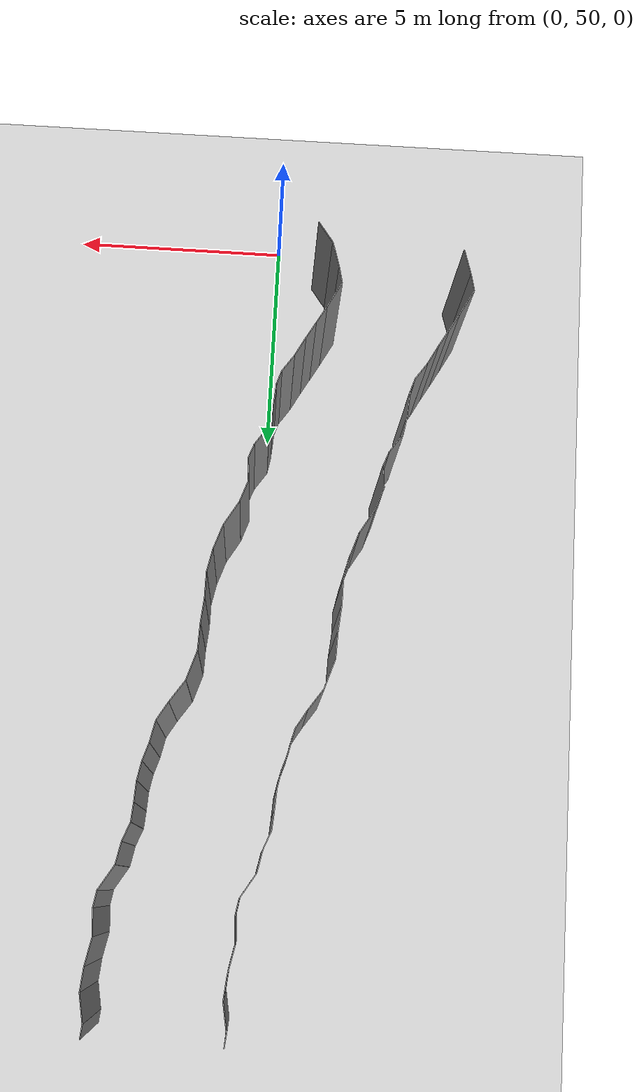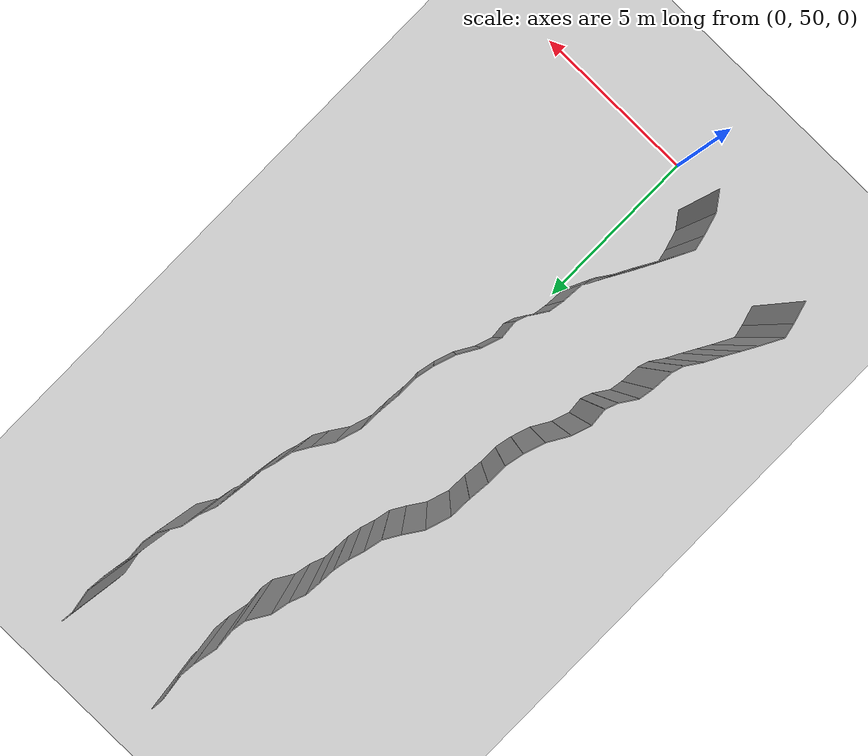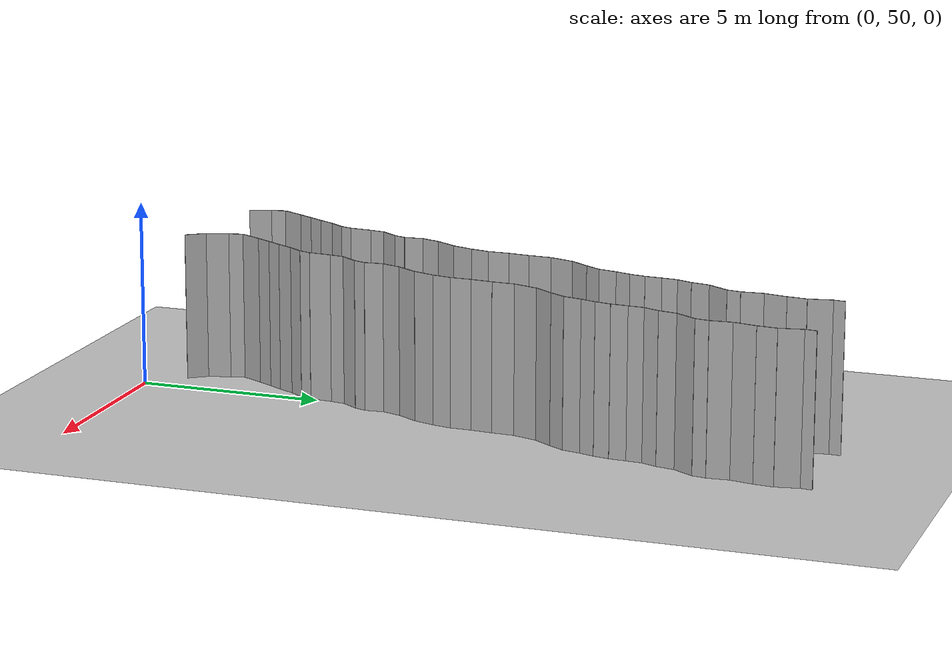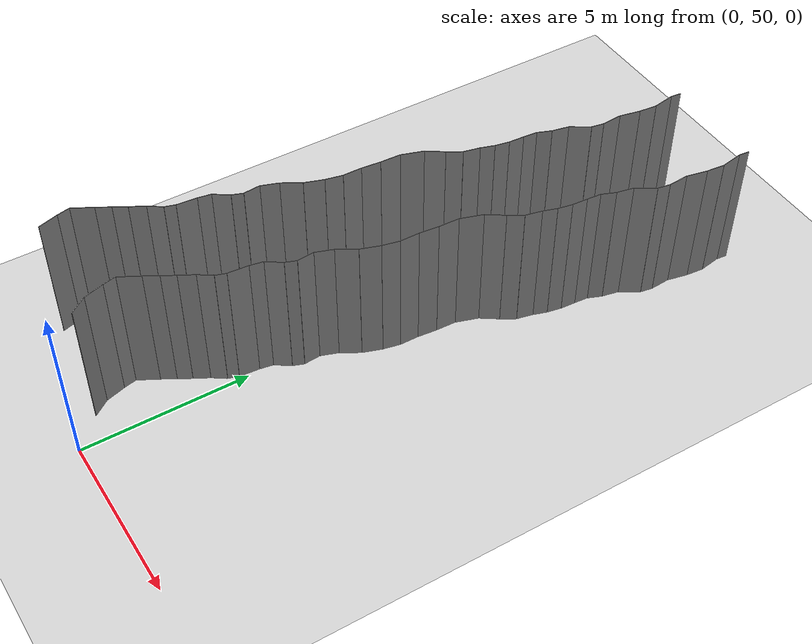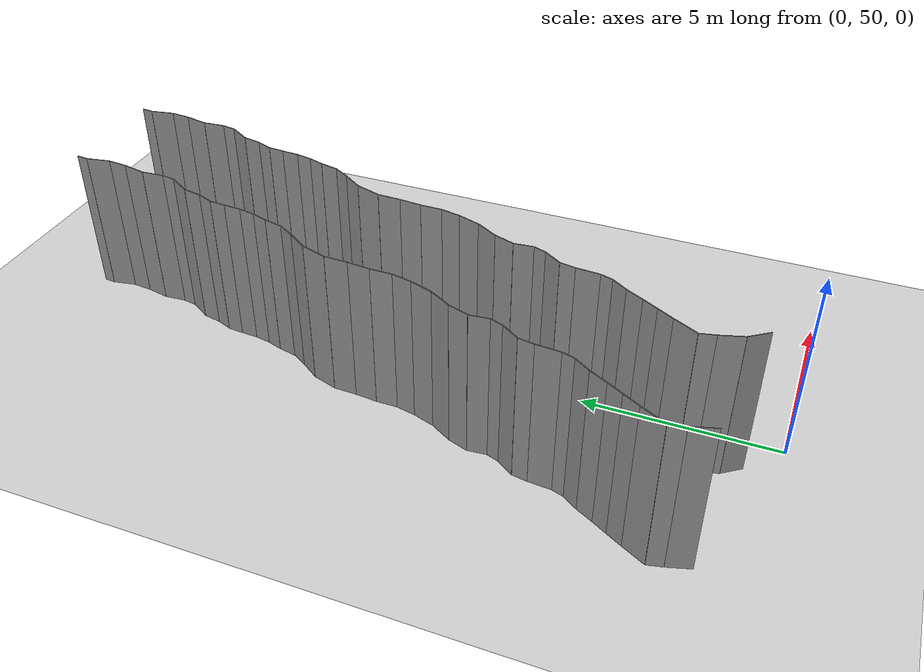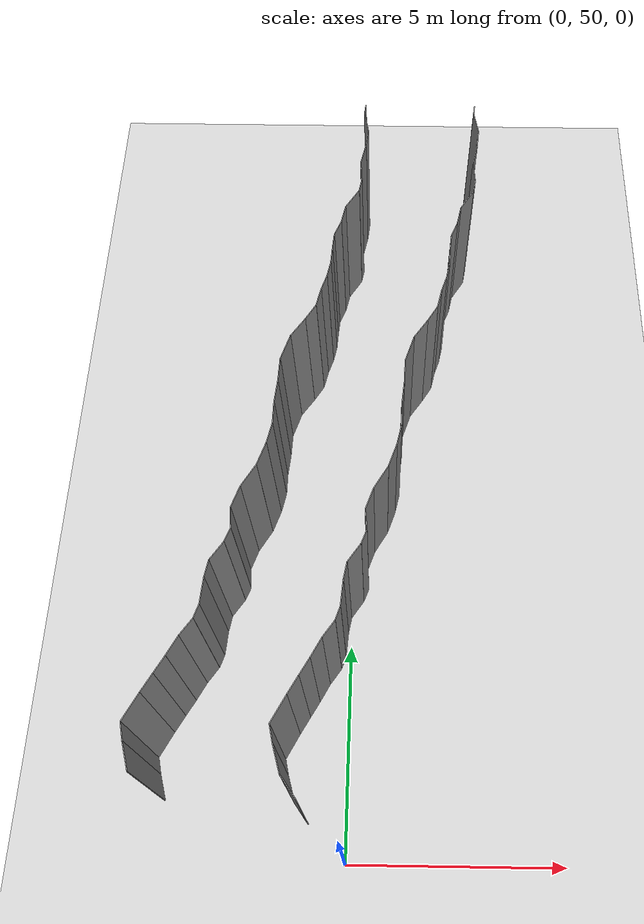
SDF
<sdf version="1.6">
 <world name="default">
  <model name="ground_plane">
   <static>1</static>
   <link name="link">
    <collision name="collision">
     <geometry><plane><normal>0 0 1</normal><size>200 200</size></plane></geometry>
     <surface><friction><ode><mu>100</mu><mu2>50</mu2></ode></friction></surface>
    </collision>
    <visual name="visual">
     <cast_shadows>0</cast_shadows>
     <geometry><plane><normal>0 0 1</normal><size>200 200</size></plane></geometry>
     <material>
      <script><uri>file://media/materials/scripts/gazebo.material</uri><name>Gazebo/Grey</name></script>
     </material>
    </visual>
   </link>
   <pose>0 100 0 0 -0 0</pose>
  </model>
  <model name="wall_225">
   <static>1</static>
   <pose>-1.053960974131007 51.09263801632883 2 0 0 0.6311708383575996</pose>
   <link name="link">
    <collision name="collision"><geometry><box><size>0.02 0.585196452979 4</size></box></geometry></collision>
    <visual name="visual">
     <material>
      <script><name>Gazebo/Grey</name><uri>file://media/materials/scripts/gazebo.material</uri></script>
     </material>
     <geometry><box><size>0.02 0.585196452979 4</size></box></geometry>
    </visual>
   </link>
  </model>
  <model name="wall_226">
   <static>1</static>
   <pose>-4.313591516272705 51.62228531443991 2 0 0 0.28815355595222164</pose>
   <link name="link">
    <collision name="collision"><geometry><box><size>0.02 0.612079652356 4</size></box></geometry></collision>
    <visual name="visual">
     <material>
      <script><name>Gazebo/Grey</name><uri>file://media/materials/scripts/gazebo.material</uri></script>
     </material>
     <geometry><box><size>0.02 0.612079652356 4</size></box></geometry>
    </visual>
   </link>
  </model>
  <model name="wall_227">
   <static>1</static>
   <pose>-1.3135915162727052 51.62228531443991 2 0 0 0.28815355595222164</pose>
   <link name="link">
    <collision name="collision"><geometry><box><size>0.02 0.612079652356 4</size></box></geometry></collision>
    <visual name="visual">
     <material>
      <script><name>Gazebo/Grey</name><uri>file://media/materials/scripts/gazebo.material</uri></script>
     </material>
     <geometry><box><size>0.02 0.612079652356 4</size></box></geometry>
    </visual>
   </link>
  </model>
  <model name="wall_228">
   <static>1</static>
   <pose>-4.443795864172004 52.1078659533584 2 0 0 0.2213020373706532</pose>
   <link name="link">
    <collision name="collision"><geometry><box><size>0.02 0.39392436345 4</size></box></geometry></collision>
    <visual name="visual">
     <material>
      <script><name>Gazebo/Grey</name><uri>file://media/materials/scripts/gazebo.material</uri></script>
     </material>
     <geometry><box><size>0.02 0.39392436345 4</size></box></geometry>
    </visual>
   </link>
  </model>
  <model name="wall_229">
   <static>1</static>
   <pose>-1.443795864172004 52.1078659533584 2 0 0 0.2213020373706532</pose>
   <link name="link">
    <collision name="collision"><geometry><box><size>0.02 0.39392436345 4</size></box></geometry></collision>
    <visual name="visual">
     <material>
      <script><name>Gazebo/Grey</name><uri>file://media/materials/scripts/gazebo.material</uri></script>
     </material>
     <geometry><box><size>0.02 0.39392436345 4</size></box></geometry>
    </visual>
   </link>
  </model>
  <model name="wall_230">
   <static>1</static>
   <pose>-4.3285591184644145 52.595350454177186 2 0 0 -0.4924923214109593</pose>
   <link name="link">
    <collision name="collision"><geometry><box><size>0.02 0.670313421921 4</size></box></geometry></collision>
    <visual name="visual">
     <material>
      <script><name>Gazebo/Grey</name><uri>file://media/materials/scripts/gazebo.material</uri></script>
     </material>
     <geometry><box><size>0.02 0.670313421921 4</size></box></geometry>
    </visual>
   </link>
  </model>
  <model name="wall_231">
   <static>1</static>
   <pose>-1.3285591184644145 52.595350454177186 2 0 0 -0.4924923214109593</pose>
   <link name="link">
    <collision name="collision"><geometry><box><size>0.02 0.670313421921 4</size></box></geometry></collision>
    <visual name="visual">
     <material>
      <script><name>Gazebo/Grey</name><uri>file://media/materials/scripts/gazebo.material</uri></script>
     </material>
     <geometry><box><size>0.02 0.670313421921 4</size></box></geometry>
    </visual>
   </link>
  </model>
  <model name="wall_232">
   <static>1</static>
   <pose>-4.057388581017793 53.08892494926154 2 0 0 -0.516920984669709</pose>
   <link name="link">
    <collision name="collision"><geometry><box><size>0.02 0.456087662764 4</size></box></geometry></collision>
    <visual name="visual">
     <material>
      <script><name>Gazebo/Grey</name><uri>file://media/materials/scripts/gazebo.material</uri></script>
     </material>
     <geometry><box><size>0.02 0.456087662764 4</size></box></geometry>
    </visual>
   </link>
  </model>
  <model name="wall_233">
   <static>1</static>
   <pose>-1.0573885810177934 53.08892494926154 2 0 0 -0.516920984669709</pose>
   <link name="link">
    <collision name="collision"><geometry><box><size>0.02 0.456087662764 4</size></box></geometry></collision>
    <visual name="visual">
     <material>
      <script><name>Gazebo/Grey</name><uri>file://media/materials/scripts/gazebo.material</uri></script>
     </material>
     <geometry><box><size>0.02 0.456087662764 4</size></box></geometry>
    </visual>
   </link>
  </model>
  <model name="wall_234">
   <static>1</static>
   <pose>-3.8372769820039982 53.47367563590675 2 0 0 -0.5225287629389027</pose>
   <link name="link">
    <collision name="collision"><geometry><box><size>0.02 0.430442089275 4</size></box></geometry></collision>
    <visual name="visual">
     <material>
      <script><name>Gazebo/Grey</name><uri>file://media/materials/scripts/gazebo.material</uri></script>
     </material>
     <geometry><box><size>0.02 0.430442089275 4</size></box></geometry>
    </visual>
   </link>
  </model>
  <model name="wall_235">
   <static>1</static>
   <pose>-0.8372769820039982 53.47367563590675 2 0 0 -0.5225287629389027</pose>
   <link name="link">
    <collision name="collision"><geometry><box><size>0.02 0.430442089275 4</size></box></geometry></collision>
    <visual name="visual">
     <material>
      <script><name>Gazebo/Grey</name><uri>file://media/materials/scripts/gazebo.material</uri></script>
     </material>
     <geometry><box><size>0.02 0.430442089275 4</size></box></geometry>
    </visual>
   </link>
  </model>
  <model name="wall_236">
   <static>1</static>
   <pose>-3.6143831962733057 53.87472829082133 2 0 0 -0.49378037622410126</pose>
   <link name="link">
    <collision name="collision"><geometry><box><size>0.02 0.487312145254 4</size></box></geometry></collision>
    <visual name="visual">
     <material>
      <script><name>Gazebo/Grey</name><uri>file://media/materials/scripts/gazebo.material</uri></script>
     </material>
     <geometry><box><size>0.02 0.487312145254 4</size></box></geometry>
    </visual>
   </link>
  </model>
  <model name="wall_237">
   <static>1</static>
   <pose>-0.6143831962733057 53.87472829082133 2 0 0 -0.49378037622410126</pose>
   <link name="link">
    <collision name="collision"><geometry><box><size>0.02 0.487312145254 4</size></box></geometry></collision>
    <visual name="visual">
     <material>
      <script><name>Gazebo/Grey</name><uri>file://media/materials/scripts/gazebo.material</uri></script>
     </material>
     <geometry><box><size>0.02 0.487312145254 4</size></box></geometry>
    </visual>
   </link>
  </model>
  <model name="wall_238">
   <static>1</static>
   <pose>-3.367631276827038 54.27858616292878 2 0 0 -0.6062954650359139</pose>
   <link name="link">
    <collision name="collision"><geometry><box><size>0.02 0.460733275768 4</size></box></geometry></collision>
    <visual name="visual">
     <material>
      <script><name>Gazebo/Grey</name><uri>file://media/materials/scripts/gazebo.material</uri></script>
     </material>
     <geometry><box><size>0.02 0.460733275768 4</size></box></geometry>
    </visual>
   </link>
  </model>
  <model name="wall_239">
   <static>1</static>
   <pose>-0.367631276827038 54.27858616292878 2 0 0 -0.6062954650359139</pose>
   <link name="link">
    <collision name="collision"><geometry><box><size>0.02 0.460733275768 4</size></box></geometry></collision>
    <visual name="visual">
     <material>
      <script><name>Gazebo/Grey</name><uri>file://media/materials/scripts/gazebo.material</uri></script>
     </material>
     <geometry><box><size>0.02 0.460733275768 4</size></box></geometry>
    </visual>
   </link>
  </model>
  <model name="wall_240">
   <static>1</static>
   <pose>-3.1864680429670886 54.62131764543145 2 0 0 -0.3144156220287633</pose>
   <link name="link">
    <collision name="collision"><geometry><box><size>0.02 0.322666672977 4</size></box></geometry></collision>
    <visual name="visual">
     <material>
      <script><name>Gazebo/Grey</name><uri>file://media/materials/scripts/gazebo.material</uri></script>
     </material>
     <geometry><box><size>0.02 0.322666672977 4</size></box></geometry>
    </visual>
   </link>
  </model>
  <model name="wall_241">
   <static>1</static>
   <pose>-0.18646804296708863 54.62131764543145 2 0 0 -0.3144156220287633</pose>
   <link name="link">
    <collision name="collision"><geometry><box><size>0.02 0.322666672977 4</size></box></geometry></collision>
    <visual name="visual">
     <material>
      <script><name>Gazebo/Grey</name><uri>file://media/materials/scripts/gazebo.material</uri></script>
     </material>
     <geometry><box><size>0.02 0.322666672977 4</size></box></geometry>
    </visual>
   </link>
  </model>
  <model name="wall_242">
   <static>1</static>
   <pose>-3.113870644262893 55.07730561660844 2 0 0 -0.07489616552642116</pose>
   <link name="link">
    <collision name="collision"><geometry><box><size>0.02 0.606828458838 4</size></box></geometry></collision>
    <visual name="visual">
     <material>
      <script><name>Gazebo/Grey</name><uri>file://media/materials/scripts/gazebo.material</uri></script>
     </material>
     <geometry><box><size>0.02 0.606828458838 4</size></box></geometry>
    </visual>
   </link>
  </model>
  <model name="wall_243">
   <static>1</static>
   <pose>-0.11387064426289317 55.07730561660844 2 0 0 -0.07489616552642116</pose>
   <link name="link">
    <collision name="collision"><geometry><box><size>0.02 0.606828458838 4</size></box></geometry></collision>
    <visual name="visual">
     <material>
      <script><name>Gazebo/Grey</name><uri>file://media/materials/scripts/gazebo.material</uri></script>
     </material>
     <geometry><box><size>0.02 0.606828458838 4</size></box></geometry>
    </visual>
   </link>
  </model>
  <model name="wall_244">
   <static>1</static>
   <pose>-3.0568766505906884 55.57688165887924 2 0 0 -0.1723270054477809</pose>
   <link name="link">
    <collision name="collision"><geometry><box><size>0.02 0.399948688607 4</size></box></geometry></collision>
    <visual name="visual">
     <material>
      <script><name>Gazebo/Grey</name><uri>file://media/materials/scripts/gazebo.material</uri></script>
     </material>
     <geometry><box><size>0.02 0.399948688607 4</size></box></geometry>
    </visual>
   </link>
  </model>
  <model name="wall_245">
   <static>1</static>
   <pose>-0.05687665059068836 55.57688165887924 2 0 0 -0.1723270054477809</pose>
   <link name="link">
    <collision name="collision"><geometry><box><size>0.02 0.399948688607 4</size></box></geometry></collision>
    <visual name="visual">
     <material>
      <script><name>Gazebo/Grey</name><uri>file://media/materials/scripts/gazebo.material</uri></script>
     </material>
     <geometry><box><size>0.02 0.399948688607 4</size></box></geometry>
    </visual>
   </link>
  </model>
  <model name="wall_246">
   <static>1</static>
   <pose>-2.8752136439465263 55.98982087889908 2 0 0 -0.5988914115816751</pose>
   <link name="link">
    <collision name="collision"><geometry><box><size>0.02 0.522849860803 4</size></box></geometry></collision>
    <visual name="visual">
     <material>
      <script><name>Gazebo/Grey</name><uri>file://media/materials/scripts/gazebo.material</uri></script>
     </material>
     <geometry><box><size>0.02 0.522849860803 4</size></box></geometry>
    </visual>
   </link>
  </model>
  <model name="wall_247">
   <static>1</static>
   <pose>0.12478635605347366 55.98982087889908 2 0 0 -0.5988914115816751</pose>
   <link name="link">
    <collision name="collision"><geometry><box><size>0.02 0.522849860803 4</size></box></geometry></collision>
    <visual name="visual">
     <material>
      <script><name>Gazebo/Grey</name><uri>file://media/materials/scripts/gazebo.material</uri></script>
     </material>
     <geometry><box><size>0.02 0.522849860803 4</size></box></geometry>
    </visual>
   </link>
  </model>
  <model name="wall_248">
   <static>1</static>
   <pose>-2.6685911568690313 56.365914588318134 2 0 0 -0.35431621237661615</pose>
   <link name="link">
    <collision name="collision"><geometry><box><size>0.02 0.341549498167 4</size></box></geometry></collision>
    <visual name="visual">
     <material>
      <script><name>Gazebo/Grey</name><uri>file://media/materials/scripts/gazebo.material</uri></script>
     </material>
     <geometry><box><size>0.02 0.341549498167 4</size></box></geometry>
    </visual>
   </link>
  </model>
  <model name="wall_249">
   <static>1</static>
   <pose>0.33140884313096874 56.365914588318134 2 0 0 -0.35431621237661615</pose>
   <link name="link">
    <collision name="collision"><geometry><box><size>0.02 0.341549498167 4</size></box></geometry></collision>
    <visual name="visual">
     <material>
      <script><name>Gazebo/Grey</name><uri>file://media/materials/scripts/gazebo.material</uri></script>
     </material>
     <geometry><box><size>0.02 0.341549498167 4</size></box></geometry>
    </visual>
   </link>
  </model>
  <model name="wall_250">
   <static>1</static>
   <pose>-2.630984577721905 56.77740937958865 2 0 0 0.08590492916488433</pose>
   <link name="link">
    <collision name="collision"><geometry><box><size>0.02 0.504516224676 4</size></box></geometry></collision>
    <visual name="visual">
     <material>
      <script><name>Gazebo/Grey</name><uri>file://media/materials/scripts/gazebo.material</uri></script>
     </material>
     <geometry><box><size>0.02 0.504516224676 4</size></box></geometry>
    </visual>
   </link>
  </model>
  <model name="wall_251">
   <static>1</static>
   <pose>0.3690154222780948 56.77740937958865 2 0 0 0.08590492916488433</pose>
   <link name="link">
    <collision name="collision"><geometry><box><size>0.02 0.504516224676 4</size></box></geometry></collision>
    <visual name="visual">
     <material>
      <script><name>Gazebo/Grey</name><uri>file://media/materials/scripts/gazebo.material</uri></script>
     </material>
     <geometry><box><size>0.02 0.504516224676 4</size></box></geometry>
    </visual>
   </link>
  </model>
  <model name="wall_252">
   <static>1</static>
   <pose>-2.564251802209616 57.28565608776256 2 0 0 -0.33130667886279186</pose>
   <link name="link">
    <collision name="collision"><geometry><box><size>0.02 0.54338809382 4</size></box></geometry></collision>
    <visual name="visual">
     <material>
      <script><name>Gazebo/Grey</name><uri>file://media/materials/scripts/gazebo.material</uri></script>
     </material>
     <geometry><box><size>0.02 0.54338809382 4</size></box></geometry>
    </visual>
   </link>
  </model>
  <model name="wall_253">
   <static>1</static>
   <pose>0.4357481977903839 57.28565608776256 2 0 0 -0.33130667886279186</pose>
   <link name="link">
    <collision name="collision"><geometry><box><size>0.02 0.54338809382 4</size></box></geometry></collision>
    <visual name="visual">
     <material>
      <script><name>Gazebo/Grey</name><uri>file://media/materials/scripts/gazebo.material</uri></script>
     </material>
     <geometry><box><size>0.02 0.54338809382 4</size></box></geometry>
    </visual>
   </link>
  </model>
  <model name="wall_254">
   <static>1</static>
   <pose>-2.314101299269996 57.81556078549317 2 0 0 -0.5349679301866068</pose>
   <link name="link">
    <collision name="collision"><geometry><box><size>0.02 0.634640593675 4</size></box></geometry></collision>
    <visual name="visual">
     <material>
      <script><name>Gazebo/Grey</name><uri>file://media/materials/scripts/gazebo.material</uri></script>
     </material>
     <geometry><box><size>0.02 0.634640593675 4</size></box></geometry>
    </visual>
   </link>
  </model>
  <model name="wall_255">
   <static>1</static>
   <pose>0.6858987007300041 57.81556078549317 2 0 0 -0.5349679301866068</pose>
   <link name="link">
    <collision name="collision"><geometry><box><size>0.02 0.634640593675 4</size></box></geometry></collision>
    <visual name="visual">
     <material>
      <script><name>Gazebo/Grey</name><uri>file://media/materials/scripts/gazebo.material</uri></script>
     </material>
     <geometry><box><size>0.02 0.634640593675 4</size></box></geometry>
    </visual>
   </link>
  </model>
  <model name="wall_256">
   <static>1</static>
   <pose>-2.0568864764338244 58.37078368838456 2 0 0 -0.3260863302510909</pose>
   <link name="link">
    <collision name="collision"><geometry><box><size>0.02 0.595874668885 4</size></box></geometry></collision>
    <visual name="visual">
     <material>
      <script><name>Gazebo/Grey</name><uri>file://media/materials/scripts/gazebo.material</uri></script>
     </material>
     <geometry><box><size>0.02 0.595874668885 4</size></box></geometry>
    </visual>
   </link>
  </model>
  <model name="wall_257">
   <static>1</static>
   <pose>0.9431135235661756 58.37078368838456 2 0 0 -0.3260863302510909</pose>
   <link name="link">
    <collision name="collision"><geometry><box><size>0.02 0.595874668885 4</size></box></geometry></collision>
    <visual name="visual">
     <material>
      <script><name>Gazebo/Grey</name><uri>file://media/materials/scripts/gazebo.material</uri></script>
     </material>
     <geometry><box><size>0.02 0.595874668885 4</size></box></geometry>
    </visual>
   </link>
  </model>
  <model name="wall_258">
   <static>1</static>
   <pose>-1.9081108074323918 58.90843074367775 2 0 0 -0.20586280793740655</pose>
   <link name="link">
    <collision name="collision"><geometry><box><size>0.02 0.521838709209 4</size></box></geometry></collision>
    <visual name="visual">
     <material>
      <script><name>Gazebo/Grey</name><uri>file://media/materials/scripts/gazebo.material</uri></script>
     </material>
     <geometry><box><size>0.02 0.521838709209 4</size></box></geometry>
    </visual>
   </link>
  </model>
  <model name="wall_259">
   <static>1</static>
   <pose>1.0918891925676082 58.90843074367775 2 0 0 -0.20586280793740655</pose>
   <link name="link">
    <collision name="collision"><geometry><box><size>0.02 0.521838709209 4</size></box></geometry></collision>
    <visual name="visual">
     <material>
      <script><name>Gazebo/Grey</name><uri>file://media/materials/scripts/gazebo.material</uri></script>
     </material>
     <geometry><box><size>0.02 0.521838709209 4</size></box></geometry>
    </visual>
   </link>
  </model>
  <model name="wall_260">
   <static>1</static>
   <pose>-1.8527419353428027 59.4483133286981 2 0 0 -0.007149497689815782</pose>
   <link name="link">
    <collision name="collision"><geometry><box><size>0.02 0.568959636434 4</size></box></geometry></collision>
    <visual name="visual">
     <material>
      <script><name>Gazebo/Grey</name><uri>file://media/materials/scripts/gazebo.material</uri></script>
     </material>
     <geometry><box><size>0.02 0.568959636434 4</size></box></geometry>
    </visual>
   </link>
  </model>
  <model name="wall_261">
   <static>1</static>
   <pose>1.1472580646571973 59.4483133286981 2 0 0 -0.007149497689815782</pose>
   <link name="link">
    <collision name="collision"><geometry><box><size>0.02 0.568959636434 4</size></box></geometry></collision>
    <visual name="visual">
     <material>
      <script><name>Gazebo/Grey</name><uri>file://media/materials/scripts/gazebo.material</uri></script>
     </material>
     <geometry><box><size>0.02 0.568959636434 4</size></box></geometry>
    </visual>
   </link>
  </model>
  <model name="wall_262">
   <static>1</static>
   <pose>-1.8233978750243514 60.02328015549764 2 0 0 -0.09373731678627432</pose>
   <link name="link">
    <collision name="collision"><geometry><box><size>0.02 0.583550418426 4</size></box></geometry></collision>
    <visual name="visual">
     <material>
      <script><name>Gazebo/Grey</name><uri>file://media/materials/scripts/gazebo.material</uri></script>
     </material>
     <geometry><box><size>0.02 0.583550418426 4</size></box></geometry>
    </visual>
   </link>
  </model>
  <model name="wall_263">
   <static>1</static>
   <pose>1.1766021249756486 60.02328015549764 2 0 0 -0.09373731678627432</pose>
   <link name="link">
    <collision name="collision"><geometry><box><size>0.02 0.583550418426 4</size></box></geometry></collision>
    <visual name="visual">
     <material>
      <script><name>Gazebo/Grey</name><uri>file://media/materials/scripts/gazebo.material</uri></script>
     </material>
     <geometry><box><size>0.02 0.583550418426 4</size></box></geometry>
    </visual>
   </link>
  </model>
  <model name="wall_264">
   <static>1</static>
   <pose>-1.7856632649686366 60.61857516389745 2 0 0 -0.03418744644746093</pose>
   <link name="link">
    <collision name="collision"><geometry><box><size>0.02 0.609957877443 4</size></box></geometry></collision>
    <visual name="visual">
     <material>
      <script><name>Gazebo/Grey</name><uri>file://media/materials/scripts/gazebo.material</uri></script>
     </material>
     <geometry><box><size>0.02 0.609957877443 4</size></box></geometry>
    </visual>
   </link>
  </model>
  <model name="wall_265">
   <static>1</static>
   <pose>1.2143367350313634 60.61857516389745 2 0 0 -0.03418744644746093</pose>
   <link name="link">
    <collision name="collision"><geometry><box><size>0.02 0.609957877443 4</size></box></geometry></collision>
    <visual name="visual">
     <material>
      <script><name>Gazebo/Grey</name><uri>file://media/materials/scripts/gazebo.material</uri></script>
     </material>
     <geometry><box><size>0.02 0.609957877443 4</size></box></geometry>
    </visual>
   </link>
  </model>
  <model name="wall_266">
   <static>1</static>
   <pose>-1.6695350269210587 61.25275930467822 2 0 0 -0.31053201641748646</pose>
   <link name="link">
    <collision name="collision"><geometry><box><size>0.02 0.691857583388 4</size></box></geometry></collision>
    <visual name="visual">
     <material>
      <script><name>Gazebo/Grey</name><uri>file://media/materials/scripts/gazebo.material</uri></script>
     </material>
     <geometry><box><size>0.02 0.691857583388 4</size></box></geometry>
    </visual>
   </link>
  </model>
  <model name="wall_267">
   <static>1</static>
   <pose>1.3304649730789413 61.25275930467822 2 0 0 -0.31053201641748646</pose>
   <link name="link">
    <collision name="collision"><geometry><box><size>0.02 0.691857583388 4</size></box></geometry></collision>
    <visual name="visual">
     <material>
      <script><name>Gazebo/Grey</name><uri>file://media/materials/scripts/gazebo.material</uri></script>
     </material>
     <geometry><box><size>0.02 0.691857583388 4</size></box></geometry>
    </visual>
   </link>
  </model>
  <model name="wall_268">
   <static>1</static>
   <pose>-1.3968807987128358 61.82710893085747 2 0 0 -0.598218198185668</pose>
   <link name="link">
    <collision name="collision"><geometry><box><size>0.02 0.592894209193 4</size></box></geometry></collision>
    <visual name="visual">
     <material>
      <script><name>Gazebo/Grey</name><uri>file://media/materials/scripts/gazebo.material</uri></script>
     </material>
     <geometry><box><size>0.02 0.592894209193 4</size></box></geometry>
    </visual>
   </link>
  </model>
  <model name="wall_269">
   <static>1</static>
   <pose>1.6031192012871642 61.82710893085747 2 0 0 -0.598218198185668</pose>
   <link name="link">
    <collision name="collision"><geometry><box><size>0.02 0.592894209193 4</size></box></geometry></collision>
    <visual name="visual">
     <material>
      <script><name>Gazebo/Grey</name><uri>file://media/materials/scripts/gazebo.material</uri></script>
     </material>
     <geometry><box><size>0.02 0.592894209193 4</size></box></geometry>
    </visual>
   </link>
  </model>
  <model name="wall_270">
   <static>1</static>
   <pose>-1.1065470397537118 62.27844099162567 2 0 0 -0.538863989550155</pose>
   <link name="link">
    <collision name="collision"><geometry><box><size>0.02 0.480875506423 4</size></box></geometry></collision>
    <visual name="visual">
     <material>
      <script><name>Gazebo/Grey</name><uri>file://media/materials/scripts/gazebo.material</uri></script>
     </material>
     <geometry><box><size>0.02 0.480875506423 4</size></box></geometry>
    </visual>
   </link>
  </model>
  <model name="wall_271">
   <static>1</static>
   <pose>1.8934529602462882 62.27844099162567 2 0 0 -0.538863989550155</pose>
   <link name="link">
    <collision name="collision"><geometry><box><size>0.02 0.480875506423 4</size></box></geometry></collision>
    <visual name="visual">
     <material>
      <script><name>Gazebo/Grey</name><uri>file://media/materials/scripts/gazebo.material</uri></script>
     </material>
     <geometry><box><size>0.02 0.480875506423 4</size></box></geometry>
    </visual>
   </link>
  </model>
  <model name="wall_272">
   <static>1</static>
   <pose>-0.9299276263152046 62.72851456948805 2 0 0 -0.21506398308212443</pose>
   <link name="link">
    <collision name="collision"><geometry><box><size>0.02 0.498908957998 4</size></box></geometry></collision>
    <visual name="visual">
     <material>
      <script><name>Gazebo/Grey</name><uri>file://media/materials/scripts/gazebo.material</uri></script>
     </material>
     <geometry><box><size>0.02 0.498908957998 4</size></box></geometry>
    </visual>
   </link>
  </model>
  <model name="wall_273">
   <static>1</static>
   <pose>2.0700723736847952 62.72851456948805 2 0 0 -0.21506398308212443</pose>
   <link name="link">
    <collision name="collision"><geometry><box><size>0.02 0.498908957998 4</size></box></geometry></collision>
    <visual name="visual">
     <material>
      <script><name>Gazebo/Grey</name><uri>file://media/materials/scripts/gazebo.material</uri></script>
     </material>
     <geometry><box><size>0.02 0.498908957998 4</size></box></geometry>
    </visual>
   </link>
  </model>
  <model name="wall_274">
   <static>1</static>
   <pose>-0.8118767248550222 63.174292833639555 2 0 0 -0.3103863309463509</pose>
   <link name="link">
    <collision name="collision"><geometry><box><size>0.02 0.424421786097 4</size></box></geometry></collision>
    <visual name="visual">
     <material>
      <script><name>Gazebo/Grey</name><uri>file://media/materials/scripts/gazebo.material</uri></script>
     </material>
     <geometry><box><size>0.02 0.424421786097 4</size></box></geometry>
    </visual>
   </link>
  </model>
  <model name="wall_275">
   <static>1</static>
   <pose>2.188123275144978 63.174292833639555 2 0 0 -0.3103863309463509</pose>
   <link name="link">
    <collision name="collision"><geometry><box><size>0.02 0.424421786097 4</size></box></geometry></collision>
    <visual name="visual">
     <material>
      <script><name>Gazebo/Grey</name><uri>file://media/materials/scripts/gazebo.material</uri></script>
     </material>
     <geometry><box><size>0.02 0.424421786097 4</size></box></geometry>
    </visual>
   </link>
  </model>
  <model name="wall_276">
   <static>1</static>
   <pose>-0.7064322322244619 63.5896680692223 2 0 0 -0.18822235925418268</pose>
   <link name="link">
    <collision name="collision"><geometry><box><size>0.02 0.434279473738 4</size></box></geometry></collision>
    <visual name="visual">
     <material>
      <script><name>Gazebo/Grey</name><uri>file://media/materials/scripts/gazebo.material</uri></script>
     </material>
     <geometry><box><size>0.02 0.434279473738 4</size></box></geometry>
    </visual>
   </link>
  </model>
  <model name="wall_277">
   <static>1</static>
   <pose>2.293567767775538 63.5896680692223 2 0 0 -0.18822235925418268</pose>
   <link name="link">
    <collision name="collision"><geometry><box><size>0.02 0.434279473738 4</size></box></geometry></collision>
    <visual name="visual">
     <material>
      <script><name>Gazebo/Grey</name><uri>file://media/materials/scripts/gazebo.material</uri></script>
     </material>
     <geometry><box><size>0.02 0.434279473738 4</size></box></geometry>
    </visual>
   </link>
  </model>
  <model name="wall_278">
   <static>1</static>
   <pose>-0.6525344755309666 64.03184831485433 2 0 0 -0.057906001797217624</pose>
   <link name="link">
    <collision name="collision"><geometry><box><size>0.02 0.458519602413 4</size></box></geometry></collision>
    <visual name="visual">
     <material>
      <script><name>Gazebo/Grey</name><uri>file://media/materials/scripts/gazebo.material</uri></script>
     </material>
     <geometry><box><size>0.02 0.458519602413 4</size></box></geometry>
    </visual>
   </link>
  </model>
  <model name="wall_279">
   <static>1</static>
   <pose>2.3474655244690332 64.03184831485433 2 0 0 -0.057906001797217624</pose>
   <link name="link">
    <collision name="collision"><geometry><box><size>0.02 0.458519602413 4</size></box></geometry></collision>
    <visual name="visual">
     <material>
      <script><name>Gazebo/Grey</name><uri>file://media/materials/scripts/gazebo.material</uri></script>
     </material>
     <geometry><box><size>0.02 0.458519602413 4</size></box></geometry>
    </visual>
   </link>
  </model>
  <model name="wall_280">
   <static>1</static>
   <pose>-0.6226509041297345 64.47231634686862 2 0 0 -0.07836499568598874</pose>
   <link name="link">
    <collision name="collision"><geometry><box><size>0.02 0.424487717077 4</size></box></geometry></collision>
    <visual name="visual">
     <material>
      <script><name>Gazebo/Grey</name><uri>file://media/materials/scripts/gazebo.material</uri></script>
     </material>
     <geometry><box><size>0.02 0.424487717077 4</size></box></geometry>
    </visual>
   </link>
  </model>
  <model name="wall_281">
   <static>1</static>
   <pose>2.3773490958702657 64.47231634686862 2 0 0 -0.07836499568598874</pose>
   <link name="link">
    <collision name="collision"><geometry><box><size>0.02 0.424487717077 4</size></box></geometry></collision>
    <visual name="visual">
     <material>
      <script><name>Gazebo/Grey</name><uri>file://media/materials/scripts/gazebo.material</uri></script>
     </material>
     <geometry><box><size>0.02 0.424487717077 4</size></box></geometry>
    </visual>
   </link>
  </model>
  <model name="wall_282">
   <static>1</static>
   <pose>-0.5249871720848984 64.88981464468193 2 0 0 -0.37499269593214163</pose>
   <link name="link">
    <collision name="collision"><geometry><box><size>0.02 0.442565351343 4</size></box></geometry></collision>
    <visual name="visual">
     <material>
      <script><name>Gazebo/Grey</name><uri>file://media/materials/scripts/gazebo.material</uri></script>
     </material>
     <geometry><box><size>0.02 0.442565351343 4</size></box></geometry>
    </visual>
   </link>
  </model>
  <model name="wall_283">
   <static>1</static>
   <pose>2.4750128279151014 64.88981464468193 2 0 0 -0.37499269593214163</pose>
   <link name="link">
    <collision name="collision"><geometry><box><size>0.02 0.442565351343 4</size></box></geometry></collision>
    <visual name="visual">
     <material>
      <script><name>Gazebo/Grey</name><uri>file://media/materials/scripts/gazebo.material</uri></script>
     </material>
     <geometry><box><size>0.02 0.442565351343 4</size></box></geometry>
    </visual>
   </link>
  </model>
  <model name="wall_284">
   <static>1</static>
   <pose>-0.3936228685037383 65.34497197781684 2 0 0 -0.19919158892060526</pose>
   <link name="link">
    <collision name="collision"><geometry><box><size>0.02 0.508558853009 4</size></box></geometry></collision>
    <visual name="visual">
     <material>
      <script><name>Gazebo/Grey</name><uri>file://media/materials/scripts/gazebo.material</uri></script>
     </material>
     <geometry><box><size>0.02 0.508558853009 4</size></box></geometry>
    </visual>
   </link>
  </model>
  <model name="wall_285">
   <static>1</static>
   <pose>2.6063771314962616 65.34497197781684 2 0 0 -0.19919158892060526</pose>
   <link name="link">
    <collision name="collision"><geometry><box><size>0.02 0.508558853009 4</size></box></geometry></collision>
    <visual name="visual">
     <material>
      <script><name>Gazebo/Grey</name><uri>file://media/materials/scripts/gazebo.material</uri></script>
     </material>
     <geometry><box><size>0.02 0.508558853009 4</size></box></geometry>
    </visual>
   </link>
  </model>
  <model name="wall_286">
   <static>1</static>
   <pose>-0.1745863099146678 65.8692187707989 2 0 0 -0.5503157282529849</pose>
   <link name="link">
    <collision name="collision"><geometry><box><size>0.02 0.645256569527 4</size></box></geometry></collision>
    <visual name="visual">
     <material>
      <script><name>Gazebo/Grey</name><uri>file://media/materials/scripts/gazebo.material</uri></script>
     </material>
     <geometry><box><size>0.02 0.645256569527 4</size></box></geometry>
    </visual>
   </link>
  </model>
  <model name="wall_287">
   <static>1</static>
   <pose>2.825413690085332 65.8692187707989 2 0 0 -0.5503157282529849</pose>
   <link name="link">
    <collision name="collision"><geometry><box><size>0.02 0.645256569527 4</size></box></geometry></collision>
    <visual name="visual">
     <material>
      <script><name>Gazebo/Grey</name><uri>file://media/materials/scripts/gazebo.material</uri></script>
     </material>
     <geometry><box><size>0.02 0.645256569527 4</size></box></geometry>
    </visual>
   </link>
  </model>
  <model name="wall_288">
   <static>1</static>
   <pose>0.025861333642383584 66.32881007122126 2 0 0 -0.17021026354665064</pose>
   <link name="link">
    <collision name="collision"><geometry><box><size>0.02 0.374605423001 4</size></box></geometry></collision>
    <visual name="visual">
     <material>
      <script><name>Gazebo/Grey</name><uri>file://media/materials/scripts/gazebo.material</uri></script>
     </material>
     <geometry><box><size>0.02 0.374605423001 4</size></box></geometry>
    </visual>
   </link>
  </model>
  <model name="wall_289">
   <static>1</static>
   <pose>3.0258613336423834 66.32881007122126 2 0 0 -0.17021026354665064</pose>
   <link name="link">
    <collision name="collision"><geometry><box><size>0.02 0.374605423001 4</size></box></geometry></collision>
    <visual name="visual">
     <material>
      <script><name>Gazebo/Grey</name><uri>file://media/materials/scripts/gazebo.material</uri></script>
     </material>
     <geometry><box><size>0.02 0.374605423001 4</size></box></geometry>
    </visual>
   </link>
  </model>
  <model name="wall_290">
   <static>1</static>
   <pose>0.037528127399236264 66.8119099641909 2 0 0 0.06710203328933523</pose>
   <link name="link">
    <collision name="collision"><geometry><box><size>0.02 0.59835431586 4</size></box></geometry></collision>
    <visual name="visual">
     <material>
      <script><name>Gazebo/Grey</name><uri>file://media/materials/scripts/gazebo.material</uri></script>
     </material>
     <geometry><box><size>0.02 0.59835431586 4</size></box></geometry>
    </visual>
   </link>
  </model>
  <model name="wall_291">
   <static>1</static>
   <pose>3.037528127399236 66.8119099641909 2 0 0 0.06710203328933523</pose>
   <link name="link">
    <collision name="collision"><geometry><box><size>0.02 0.59835431586 4</size></box></geometry></collision>
    <visual name="visual">
     <material>
      <script><name>Gazebo/Grey</name><uri>file://media/materials/scripts/gazebo.material</uri></script>
     </material>
     <geometry><box><size>0.02 0.59835431586 4</size></box></geometry>
    </visual>
   </link>
  </model>
  <model name="wall_292">
   <static>1</static>
   <pose>0.08075354248636182 67.419080368579 2 0 0 -0.20222691147309246</pose>
   <link name="link">
    <collision name="collision"><geometry><box><size>0.02 0.630174963543 4</size></box></geometry></collision>
    <visual name="visual">
     <material>
      <script><name>Gazebo/Grey</name><uri>file://media/materials/scripts/gazebo.material</uri></script>
     </material>
     <geometry><box><size>0.02 0.630174963543 4</size></box></geometry>
    </visual>
   </link>
  </model>
  <model name="wall_293">
   <static>1</static>
   <pose>3.0807535424863617 67.419080368579 2 0 0 -0.20222691147309246</pose>
   <link name="link">
    <collision name="collision"><geometry><box><size>0.02 0.630174963543 4</size></box></geometry></collision>
    <visual name="visual">
     <material>
      <script><name>Gazebo/Grey</name><uri>file://media/materials/scripts/gazebo.material</uri></script>
     </material>
     <geometry><box><size>0.02 0.630174963543 4</size></box></geometry>
    </visual>
   </link>
  </model>
  <model name="wall_294">
   <static>1</static>
   <pose>0.1699864483213261 67.99287844732223 2 0 0 -0.09755456995013663</pose>
   <link name="link">
    <collision name="collision"><geometry><box><size>0.02 0.532796343255 4</size></box></geometry></collision>
    <visual name="visual">
     <material>
      <script><name>Gazebo/Grey</name><uri>file://media/materials/scripts/gazebo.material</uri></script>
     </material>
     <geometry><box><size>0.02 0.532796343255 4</size></box></geometry>
    </visual>
   </link>
  </model>
  <model name="wall_295">
   <static>1</static>
   <pose>3.169986448321326 67.99287844732223 2 0 0 -0.09755456995013663</pose>
   <link name="link">
    <collision name="collision"><geometry><box><size>0.02 0.532796343255 4</size></box></geometry></collision>
    <visual name="visual">
     <material>
      <script><name>Gazebo/Grey</name><uri>file://media/materials/scripts/gazebo.material</uri></script>
     </material>
     <geometry><box><size>0.02 0.532796343255 4</size></box></geometry>
    </visual>
   </link>
  </model>
  <model name="wall_296">
   <static>1</static>
   <pose>0.1398888198322759 68.57804096040503 2 0 0 0.17336501141614383</pose>
   <link name="link">
    <collision name="collision"><geometry><box><size>0.02 0.64980256975 4</size></box></geometry></collision>
    <visual name="visual">
     <material>
      <script><name>Gazebo/Grey</name><uri>file://media/materials/scripts/gazebo.material</uri></script>
     </material>
     <geometry><box><size>0.02 0.64980256975 4</size></box></geometry>
    </visual>
   </link>
  </model>
  <model name="wall_297">
   <static>1</static>
   <pose>3.139888819832276 68.57804096040503 2 0 0 0.17336501141614383</pose>
   <link name="link">
    <collision name="collision"><geometry><box><size>0.02 0.64980256975 4</size></box></geometry></collision>
    <visual name="visual">
     <material>
      <script><name>Gazebo/Grey</name><uri>file://media/materials/scripts/gazebo.material</uri></script>
     </material>
     <geometry><box><size>0.02 0.64980256975 4</size></box></geometry>
    </visual>
   </link>
  </model>
  <model name="wall_298">
   <static>1</static>
   <pose>0.09954988018340286 69.05307596706973 2 0 0 -0.10098076257141426</pose>
   <link name="link">
    <collision name="collision"><geometry><box><size>0.02 0.311595394659 4</size></box></geometry></collision>
    <visual name="visual">
     <material>
      <script><name>Gazebo/Grey</name><uri>file://media/materials/scripts/gazebo.material</uri></script>
     </material>
     <geometry><box><size>0.02 0.311595394659 4</size></box></geometry>
    </visual>
   </link>
  </model>
  <model name="wall_299">
   <static>1</static>
   <pose>3.0995498801834027 69.05307596706973 2 0 0 -0.10098076257141426</pose>
   <link name="link">
    <collision name="collision"><geometry><box><size>0.02 0.311595394659 4</size></box></geometry></collision>
    <visual name="visual">
     <material>
      <script><name>Gazebo/Grey</name><uri>file://media/materials/scripts/gazebo.material</uri></script>
     </material>
     <geometry><box><size>0.02 0.311595394659 4</size></box></geometry>
    </visual>
   </link>
  </model>
 </world>
</sdf>
